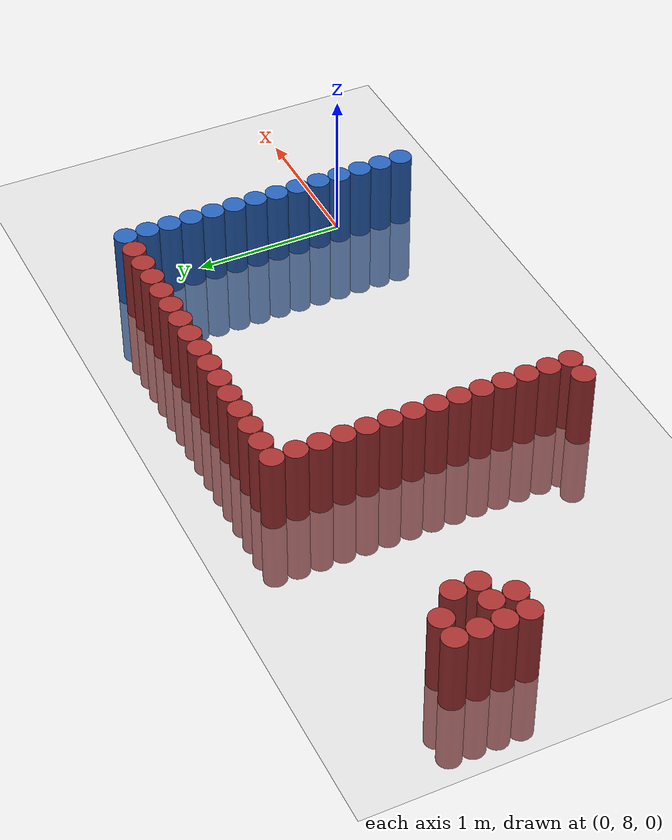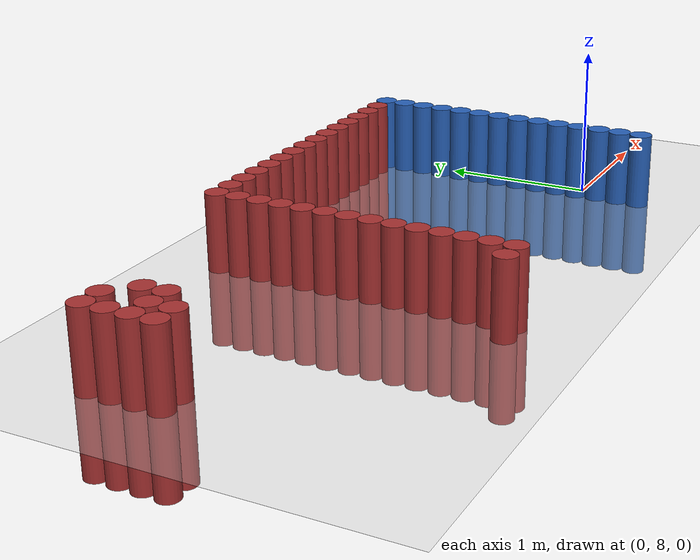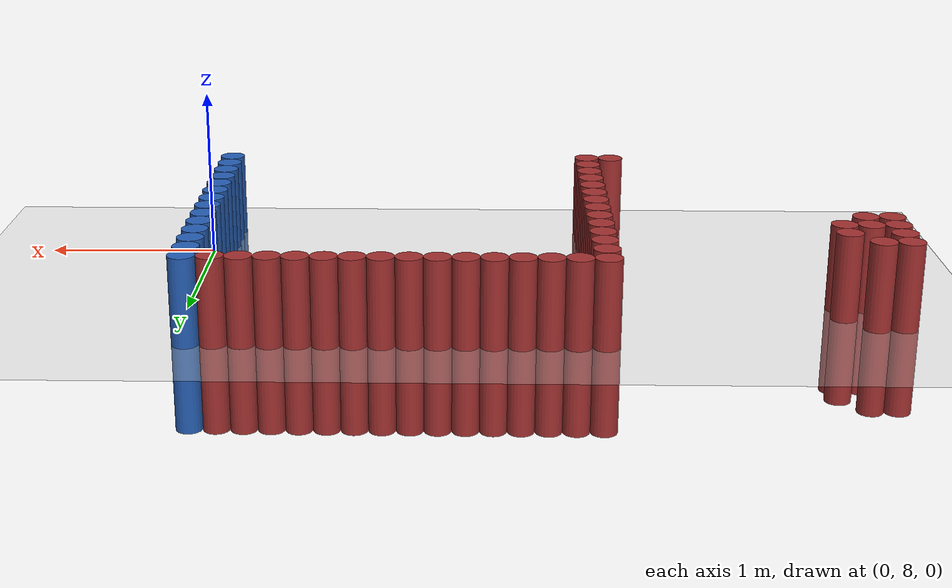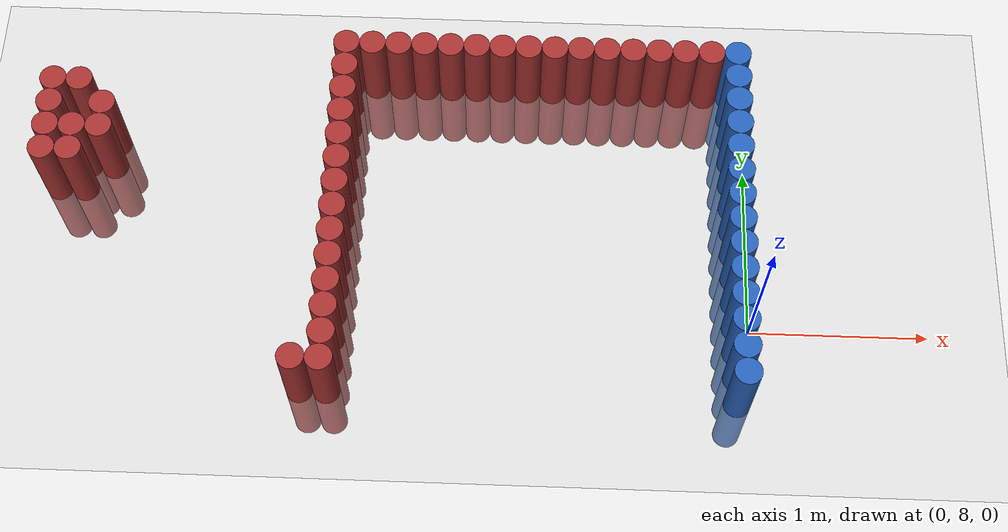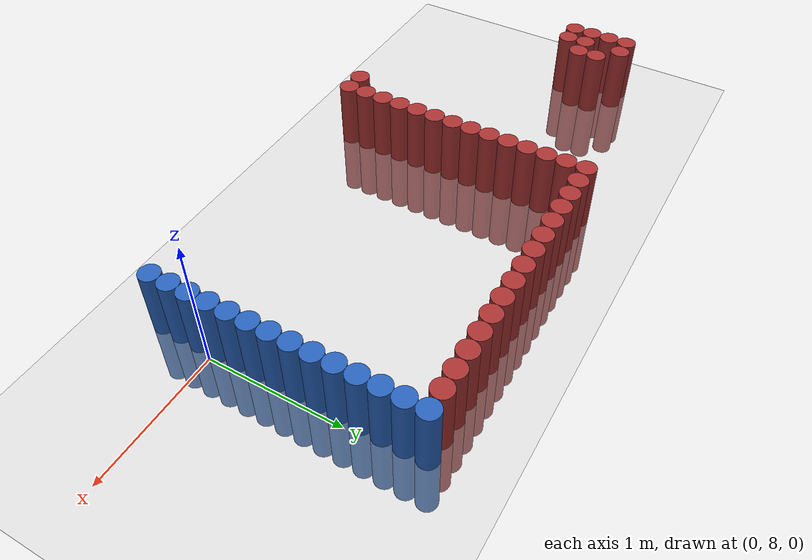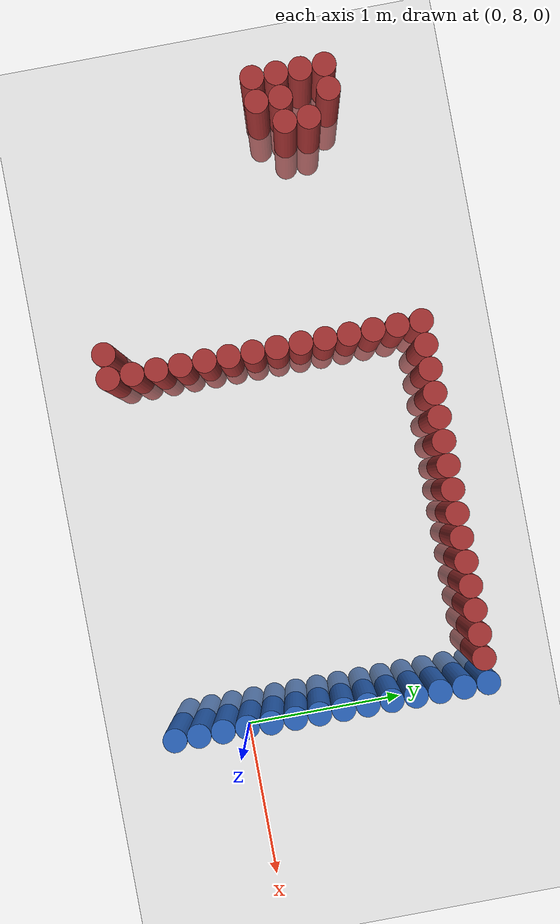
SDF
<sdf version="1.6">
 <world name="default">
  <model name="ground_plane">
   <static>1</static>
   <link name="link">
    <collision name="collision">
     <geometry><plane><normal>0 0 1</normal><size>100 100</size></plane></geometry>
     <surface><friction><ode><mu>100</mu><mu2>50</mu2></ode></friction></surface>
    </collision>
    <visual name="visual">
     <cast_shadows>0</cast_shadows>
     <geometry><plane><normal>0 0 1</normal><size>100 100</size></plane></geometry>
     <material>
      <script><uri>file://media/materials/scripts/gazebo.material</uri><name>Gazebo/Grey</name></script>
     </material>
    </visual>
   </link>
  </model>
  <model name="unit_cylinder_246">
   <static>1</static>
   <pose>-3.975000 8.775000 0.000000 0.000000 0.000000 0.000000</pose>
   <link name="link">
    <inertial>
     <mass>1</mass>
     <inertia><ixx>0.145833</ixx><ixy>0</ixy><ixz>0</ixz><iyy>0.145833</iyy><iyz>0</iyz><izz>0.125</izz></inertia>
    </inertial>
    <collision name="collision">
     <geometry><cylinder><radius>0.075000</radius><length>1</length></cylinder></geometry>
    </collision>
    <visual name="visual">
     <geometry><cylinder><radius>0.075000</radius><length>1</length></cylinder></geometry>
     <material>
      <ambient>0.648000 0.192000 0.192000 1</ambient>
      <diffuse>0.648000 0.192000 0.192000 1</diffuse>
     </material>
     <material>
      <script><name>Gazebo/Grey</name><uri>file://media/materials/scripts/gazebo.material</uri></script>
     </material>
    </visual>
   </link>
  </model>
  <model name="unit_cylinder_247">
   <static>1</static>
   <pose>-3.975000 8.925000 0.000000 0.000000 0.000000 0.000000</pose>
   <link name="link">
    <inertial>
     <mass>1</mass>
     <inertia><ixx>0.145833</ixx><ixy>0</ixy><ixz>0</ixz><iyy>0.145833</iyy><iyz>0</iyz><izz>0.125</izz></inertia>
    </inertial>
    <collision name="collision">
     <geometry><cylinder><radius>0.075000</radius><length>1</length></cylinder></geometry>
    </collision>
    <visual name="visual">
     <geometry><cylinder><radius>0.075000</radius><length>1</length></cylinder></geometry>
     <material>
      <ambient>0.648000 0.192000 0.192000 1</ambient>
      <diffuse>0.648000 0.192000 0.192000 1</diffuse>
     </material>
     <material>
      <script><name>Gazebo/Grey</name><uri>file://media/materials/scripts/gazebo.material</uri></script>
     </material>
    </visual>
   </link>
  </model>
  <model name="unit_cylinder_248">
   <static>1</static>
   <pose>-3.975000 9.075000 0.000000 0.000000 0.000000 0.000000</pose>
   <link name="link">
    <inertial>
     <mass>1</mass>
     <inertia><ixx>0.145833</ixx><ixy>0</ixy><ixz>0</ixz><iyy>0.145833</iyy><iyz>0</iyz><izz>0.125</izz></inertia>
    </inertial>
    <collision name="collision">
     <geometry><cylinder><radius>0.075000</radius><length>1</length></cylinder></geometry>
    </collision>
    <visual name="visual">
     <geometry><cylinder><radius>0.075000</radius><length>1</length></cylinder></geometry>
     <material>
      <ambient>0.648000 0.192000 0.192000 1</ambient>
      <diffuse>0.648000 0.192000 0.192000 1</diffuse>
     </material>
     <material>
      <script><name>Gazebo/Grey</name><uri>file://media/materials/scripts/gazebo.material</uri></script>
     </material>
    </visual>
   </link>
  </model>
  <model name="unit_cylinder_249">
   <static>1</static>
   <pose>-3.975000 9.225000 0.000000 0.000000 0.000000 0.000000</pose>
   <link name="link">
    <inertial>
     <mass>1</mass>
     <inertia><ixx>0.145833</ixx><ixy>0</ixy><ixz>0</ixz><iyy>0.145833</iyy><iyz>0</iyz><izz>0.125</izz></inertia>
    </inertial>
    <collision name="collision">
     <geometry><cylinder><radius>0.075000</radius><length>1</length></cylinder></geometry>
    </collision>
    <visual name="visual">
     <geometry><cylinder><radius>0.075000</radius><length>1</length></cylinder></geometry>
     <material>
      <ambient>0.648000 0.192000 0.192000 1</ambient>
      <diffuse>0.648000 0.192000 0.192000 1</diffuse>
     </material>
     <material>
      <script><name>Gazebo/Grey</name><uri>file://media/materials/scripts/gazebo.material</uri></script>
     </material>
    </visual>
   </link>
  </model>
  <model name="unit_cylinder_250">
   <static>1</static>
   <pose>-3.825000 8.775000 0.000000 0.000000 0.000000 0.000000</pose>
   <link name="link">
    <inertial>
     <mass>1</mass>
     <inertia><ixx>0.145833</ixx><ixy>0</ixy><ixz>0</ixz><iyy>0.145833</iyy><iyz>0</iyz><izz>0.125</izz></inertia>
    </inertial>
    <collision name="collision">
     <geometry><cylinder><radius>0.075000</radius><length>1</length></cylinder></geometry>
    </collision>
    <visual name="visual">
     <geometry><cylinder><radius>0.075000</radius><length>1</length></cylinder></geometry>
     <material>
      <ambient>0.648000 0.192000 0.192000 1</ambient>
      <diffuse>0.648000 0.192000 0.192000 1</diffuse>
     </material>
     <material>
      <script><name>Gazebo/Grey</name><uri>file://media/materials/scripts/gazebo.material</uri></script>
     </material>
    </visual>
   </link>
  </model>
  <model name="unit_cylinder_251">
   <static>1</static>
   <pose>-3.825000 8.925000 0.000000 0.000000 0.000000 0.000000</pose>
   <link name="link">
    <inertial>
     <mass>1</mass>
     <inertia><ixx>0.145833</ixx><ixy>0</ixy><ixz>0</ixz><iyy>0.145833</iyy><iyz>0</iyz><izz>0.125</izz></inertia>
    </inertial>
    <collision name="collision">
     <geometry><cylinder><radius>0.075000</radius><length>1</length></cylinder></geometry>
    </collision>
    <visual name="visual">
     <geometry><cylinder><radius>0.075000</radius><length>1</length></cylinder></geometry>
     <material>
      <ambient>0.648000 0.192000 0.192000 1</ambient>
      <diffuse>0.648000 0.192000 0.192000 1</diffuse>
     </material>
     <material>
      <script><name>Gazebo/Grey</name><uri>file://media/materials/scripts/gazebo.material</uri></script>
     </material>
    </visual>
   </link>
  </model>
  <model name="unit_cylinder_252">
   <static>1</static>
   <pose>-3.825000 9.225000 0.000000 0.000000 0.000000 0.000000</pose>
   <link name="link">
    <inertial>
     <mass>1</mass>
     <inertia><ixx>0.145833</ixx><ixy>0</ixy><ixz>0</ixz><iyy>0.145833</iyy><iyz>0</iyz><izz>0.125</izz></inertia>
    </inertial>
    <collision name="collision">
     <geometry><cylinder><radius>0.075000</radius><length>1</length></cylinder></geometry>
    </collision>
    <visual name="visual">
     <geometry><cylinder><radius>0.075000</radius><length>1</length></cylinder></geometry>
     <material>
      <ambient>0.648000 0.192000 0.192000 1</ambient>
      <diffuse>0.648000 0.192000 0.192000 1</diffuse>
     </material>
     <material>
      <script><name>Gazebo/Grey</name><uri>file://media/materials/scripts/gazebo.material</uri></script>
     </material>
    </visual>
   </link>
  </model>
  <model name="unit_cylinder_255">
   <static>1</static>
   <pose>-3.675000 8.925000 0.000000 0.000000 0.000000 0.000000</pose>
   <link name="link">
    <inertial>
     <mass>1</mass>
     <inertia><ixx>0.145833</ixx><ixy>0</ixy><ixz>0</ixz><iyy>0.145833</iyy><iyz>0</iyz><izz>0.125</izz></inertia>
    </inertial>
    <collision name="collision">
     <geometry><cylinder><radius>0.075000</radius><length>1</length></cylinder></geometry>
    </collision>
    <visual name="visual">
     <geometry><cylinder><radius>0.075000</radius><length>1</length></cylinder></geometry>
     <material>
      <ambient>0.648000 0.192000 0.192000 1</ambient>
      <diffuse>0.648000 0.192000 0.192000 1</diffuse>
     </material>
     <material>
      <script><name>Gazebo/Grey</name><uri>file://media/materials/scripts/gazebo.material</uri></script>
     </material>
    </visual>
   </link>
  </model>
  <model name="unit_cylinder_256">
   <static>1</static>
   <pose>-3.675000 9.075000 0.000000 0.000000 0.000000 0.000000</pose>
   <link name="link">
    <inertial>
     <mass>1</mass>
     <inertia><ixx>0.145833</ixx><ixy>0</ixy><ixz>0</ixz><iyy>0.145833</iyy><iyz>0</iyz><izz>0.125</izz></inertia>
    </inertial>
    <collision name="collision">
     <geometry><cylinder><radius>0.075000</radius><length>1</length></cylinder></geometry>
    </collision>
    <visual name="visual">
     <geometry><cylinder><radius>0.075000</radius><length>1</length></cylinder></geometry>
     <material>
      <ambient>0.648000 0.192000 0.192000 1</ambient>
      <diffuse>0.648000 0.192000 0.192000 1</diffuse>
     </material>
     <material>
      <script><name>Gazebo/Grey</name><uri>file://media/materials/scripts/gazebo.material</uri></script>
     </material>
    </visual>
   </link>
  </model>
  <model name="unit_cylinder_287">
   <static>1</static>
   <pose>-2.475000 7.575000 0.000000 0.000000 0.000000 0.000000</pose>
   <link name="link">
    <inertial>
     <mass>1</mass>
     <inertia><ixx>0.145833</ixx><ixy>0</ixy><ixz>0</ixz><iyy>0.145833</iyy><iyz>0</iyz><izz>0.125</izz></inertia>
    </inertial>
    <collision name="collision">
     <geometry><cylinder><radius>0.075000</radius><length>1</length></cylinder></geometry>
    </collision>
    <visual name="visual">
     <geometry><cylinder><radius>0.075000</radius><length>1</length></cylinder></geometry>
     <material>
      <ambient>0.648000 0.192000 0.192000 1</ambient>
      <diffuse>0.648000 0.192000 0.192000 1</diffuse>
     </material>
     <material>
      <script><name>Gazebo/Grey</name><uri>file://media/materials/scripts/gazebo.material</uri></script>
     </material>
    </visual>
   </link>
  </model>
  <model name="unit_cylinder_289">
   <static>1</static>
   <pose>-2.325000 7.575000 0.000000 0.000000 0.000000 0.000000</pose>
   <link name="link">
    <inertial>
     <mass>1</mass>
     <inertia><ixx>0.145833</ixx><ixy>0</ixy><ixz>0</ixz><iyy>0.145833</iyy><iyz>0</iyz><izz>0.125</izz></inertia>
    </inertial>
    <collision name="collision">
     <geometry><cylinder><radius>0.075000</radius><length>1</length></cylinder></geometry>
    </collision>
    <visual name="visual">
     <geometry><cylinder><radius>0.075000</radius><length>1</length></cylinder></geometry>
     <material>
      <ambient>0.648000 0.192000 0.192000 1</ambient>
      <diffuse>0.648000 0.192000 0.192000 1</diffuse>
     </material>
     <material>
      <script><name>Gazebo/Grey</name><uri>file://media/materials/scripts/gazebo.material</uri></script>
     </material>
    </visual>
   </link>
  </model>
  <model name="unit_cylinder_290">
   <static>1</static>
   <pose>-2.325000 7.725000 0.000000 0.000000 0.000000 0.000000</pose>
   <link name="link">
    <inertial>
     <mass>1</mass>
     <inertia><ixx>0.145833</ixx><ixy>0</ixy><ixz>0</ixz><iyy>0.145833</iyy><iyz>0</iyz><izz>0.125</izz></inertia>
    </inertial>
    <collision name="collision">
     <geometry><cylinder><radius>0.075000</radius><length>1</length></cylinder></geometry>
    </collision>
    <visual name="visual">
     <geometry><cylinder><radius>0.075000</radius><length>1</length></cylinder></geometry>
     <material>
      <ambient>0.648000 0.192000 0.192000 1</ambient>
      <diffuse>0.648000 0.192000 0.192000 1</diffuse>
     </material>
     <material>
      <script><name>Gazebo/Grey</name><uri>file://media/materials/scripts/gazebo.material</uri></script>
     </material>
    </visual>
   </link>
  </model>
  <model name="unit_cylinder_291">
   <static>1</static>
   <pose>-2.325000 7.875000 0.000000 0.000000 0.000000 0.000000</pose>
   <link name="link">
    <inertial>
     <mass>1</mass>
     <inertia><ixx>0.145833</ixx><ixy>0</ixy><ixz>0</ixz><iyy>0.145833</iyy><iyz>0</iyz><izz>0.125</izz></inertia>
    </inertial>
    <collision name="collision">
     <geometry><cylinder><radius>0.075000</radius><length>1</length></cylinder></geometry>
    </collision>
    <visual name="visual">
     <geometry><cylinder><radius>0.075000</radius><length>1</length></cylinder></geometry>
     <material>
      <ambient>0.648000 0.192000 0.192000 1</ambient>
      <diffuse>0.648000 0.192000 0.192000 1</diffuse>
     </material>
     <material>
      <script><name>Gazebo/Grey</name><uri>file://media/materials/scripts/gazebo.material</uri></script>
     </material>
    </visual>
   </link>
  </model>
  <model name="unit_cylinder_292">
   <static>1</static>
   <pose>-2.325000 8.025000 0.000000 0.000000 0.000000 0.000000</pose>
   <link name="link">
    <inertial>
     <mass>1</mass>
     <inertia><ixx>0.145833</ixx><ixy>0</ixy><ixz>0</ixz><iyy>0.145833</iyy><iyz>0</iyz><izz>0.125</izz></inertia>
    </inertial>
    <collision name="collision">
     <geometry><cylinder><radius>0.075000</radius><length>1</length></cylinder></geometry>
    </collision>
    <visual name="visual">
     <geometry><cylinder><radius>0.075000</radius><length>1</length></cylinder></geometry>
     <material>
      <ambient>0.648000 0.192000 0.192000 1</ambient>
      <diffuse>0.648000 0.192000 0.192000 1</diffuse>
     </material>
     <material>
      <script><name>Gazebo/Grey</name><uri>file://media/materials/scripts/gazebo.material</uri></script>
     </material>
    </visual>
   </link>
  </model>
  <model name="unit_cylinder_293">
   <static>1</static>
   <pose>-2.325000 8.175000 0.000000 0.000000 0.000000 0.000000</pose>
   <link name="link">
    <inertial>
     <mass>1</mass>
     <inertia><ixx>0.145833</ixx><ixy>0</ixy><ixz>0</ixz><iyy>0.145833</iyy><iyz>0</iyz><izz>0.125</izz></inertia>
    </inertial>
    <collision name="collision">
     <geometry><cylinder><radius>0.075000</radius><length>1</length></cylinder></geometry>
    </collision>
    <visual name="visual">
     <geometry><cylinder><radius>0.075000</radius><length>1</length></cylinder></geometry>
     <material>
      <ambient>0.648000 0.192000 0.192000 1</ambient>
      <diffuse>0.648000 0.192000 0.192000 1</diffuse>
     </material>
     <material>
      <script><name>Gazebo/Grey</name><uri>file://media/materials/scripts/gazebo.material</uri></script>
     </material>
    </visual>
   </link>
  </model>
  <model name="unit_cylinder_294">
   <static>1</static>
   <pose>-2.325000 8.325000 0.000000 0.000000 0.000000 0.000000</pose>
   <link name="link">
    <inertial>
     <mass>1</mass>
     <inertia><ixx>0.145833</ixx><ixy>0</ixy><ixz>0</ixz><iyy>0.145833</iyy><iyz>0</iyz><izz>0.125</izz></inertia>
    </inertial>
    <collision name="collision">
     <geometry><cylinder><radius>0.075000</radius><length>1</length></cylinder></geometry>
    </collision>
    <visual name="visual">
     <geometry><cylinder><radius>0.075000</radius><length>1</length></cylinder></geometry>
     <material>
      <ambient>0.648000 0.192000 0.192000 1</ambient>
      <diffuse>0.648000 0.192000 0.192000 1</diffuse>
     </material>
     <material>
      <script><name>Gazebo/Grey</name><uri>file://media/materials/scripts/gazebo.material</uri></script>
     </material>
    </visual>
   </link>
  </model>
  <model name="unit_cylinder_295">
   <static>1</static>
   <pose>-2.325000 8.475000 0.000000 0.000000 0.000000 0.000000</pose>
   <link name="link">
    <inertial>
     <mass>1</mass>
     <inertia><ixx>0.145833</ixx><ixy>0</ixy><ixz>0</ixz><iyy>0.145833</iyy><iyz>0</iyz><izz>0.125</izz></inertia>
    </inertial>
    <collision name="collision">
     <geometry><cylinder><radius>0.075000</radius><length>1</length></cylinder></geometry>
    </collision>
    <visual name="visual">
     <geometry><cylinder><radius>0.075000</radius><length>1</length></cylinder></geometry>
     <material>
      <ambient>0.648000 0.192000 0.192000 1</ambient>
      <diffuse>0.648000 0.192000 0.192000 1</diffuse>
     </material>
     <material>
      <script><name>Gazebo/Grey</name><uri>file://media/materials/scripts/gazebo.material</uri></script>
     </material>
    </visual>
   </link>
  </model>
  <model name="unit_cylinder_296">
   <static>1</static>
   <pose>-2.325000 8.625000 0.000000 0.000000 0.000000 0.000000</pose>
   <link name="link">
    <inertial>
     <mass>1</mass>
     <inertia><ixx>0.145833</ixx><ixy>0</ixy><ixz>0</ixz><iyy>0.145833</iyy><iyz>0</iyz><izz>0.125</izz></inertia>
    </inertial>
    <collision name="collision">
     <geometry><cylinder><radius>0.075000</radius><length>1</length></cylinder></geometry>
    </collision>
    <visual name="visual">
     <geometry><cylinder><radius>0.075000</radius><length>1</length></cylinder></geometry>
     <material>
      <ambient>0.648000 0.192000 0.192000 1</ambient>
      <diffuse>0.648000 0.192000 0.192000 1</diffuse>
     </material>
     <material>
      <script><name>Gazebo/Grey</name><uri>file://media/materials/scripts/gazebo.material</uri></script>
     </material>
    </visual>
   </link>
  </model>
  <model name="unit_cylinder_297">
   <static>1</static>
   <pose>-2.325000 8.775000 0.000000 0.000000 0.000000 0.000000</pose>
   <link name="link">
    <inertial>
     <mass>1</mass>
     <inertia><ixx>0.145833</ixx><ixy>0</ixy><ixz>0</ixz><iyy>0.145833</iyy><iyz>0</iyz><izz>0.125</izz></inertia>
    </inertial>
    <collision name="collision">
     <geometry><cylinder><radius>0.075000</radius><length>1</length></cylinder></geometry>
    </collision>
    <visual name="visual">
     <geometry><cylinder><radius>0.075000</radius><length>1</length></cylinder></geometry>
     <material>
      <ambient>0.648000 0.192000 0.192000 1</ambient>
      <diffuse>0.648000 0.192000 0.192000 1</diffuse>
     </material>
     <material>
      <script><name>Gazebo/Grey</name><uri>file://media/materials/scripts/gazebo.material</uri></script>
     </material>
    </visual>
   </link>
  </model>
  <model name="unit_cylinder_298">
   <static>1</static>
   <pose>-2.325000 8.925000 0.000000 0.000000 0.000000 0.000000</pose>
   <link name="link">
    <inertial>
     <mass>1</mass>
     <inertia><ixx>0.145833</ixx><ixy>0</ixy><ixz>0</ixz><iyy>0.145833</iyy><iyz>0</iyz><izz>0.125</izz></inertia>
    </inertial>
    <collision name="collision">
     <geometry><cylinder><radius>0.075000</radius><length>1</length></cylinder></geometry>
    </collision>
    <visual name="visual">
     <geometry><cylinder><radius>0.075000</radius><length>1</length></cylinder></geometry>
     <material>
      <ambient>0.648000 0.192000 0.192000 1</ambient>
      <diffuse>0.648000 0.192000 0.192000 1</diffuse>
     </material>
     <material>
      <script><name>Gazebo/Grey</name><uri>file://media/materials/scripts/gazebo.material</uri></script>
     </material>
    </visual>
   </link>
  </model>
  <model name="unit_cylinder_299">
   <static>1</static>
   <pose>-2.325000 9.075000 0.000000 0.000000 0.000000 0.000000</pose>
   <link name="link">
    <inertial>
     <mass>1</mass>
     <inertia><ixx>0.145833</ixx><ixy>0</ixy><ixz>0</ixz><iyy>0.145833</iyy><iyz>0</iyz><izz>0.125</izz></inertia>
    </inertial>
    <collision name="collision">
     <geometry><cylinder><radius>0.075000</radius><length>1</length></cylinder></geometry>
    </collision>
    <visual name="visual">
     <geometry><cylinder><radius>0.075000</radius><length>1</length></cylinder></geometry>
     <material>
      <ambient>0.648000 0.192000 0.192000 1</ambient>
      <diffuse>0.648000 0.192000 0.192000 1</diffuse>
     </material>
     <material>
      <script><name>Gazebo/Grey</name><uri>file://media/materials/scripts/gazebo.material</uri></script>
     </material>
    </visual>
   </link>
  </model>
  <model name="unit_cylinder_300">
   <static>1</static>
   <pose>-2.325000 9.225000 0.000000 0.000000 0.000000 0.000000</pose>
   <link name="link">
    <inertial>
     <mass>1</mass>
     <inertia><ixx>0.145833</ixx><ixy>0</ixy><ixz>0</ixz><iyy>0.145833</iyy><iyz>0</iyz><izz>0.125</izz></inertia>
    </inertial>
    <collision name="collision">
     <geometry><cylinder><radius>0.075000</radius><length>1</length></cylinder></geometry>
    </collision>
    <visual name="visual">
     <geometry><cylinder><radius>0.075000</radius><length>1</length></cylinder></geometry>
     <material>
      <ambient>0.648000 0.192000 0.192000 1</ambient>
      <diffuse>0.648000 0.192000 0.192000 1</diffuse>
     </material>
     <material>
      <script><name>Gazebo/Grey</name><uri>file://media/materials/scripts/gazebo.material</uri></script>
     </material>
    </visual>
   </link>
  </model>
  <model name="unit_cylinder_301">
   <static>1</static>
   <pose>-2.325000 9.375000 0.000000 0.000000 0.000000 0.000000</pose>
   <link name="link">
    <inertial>
     <mass>1</mass>
     <inertia><ixx>0.145833</ixx><ixy>0</ixy><ixz>0</ixz><iyy>0.145833</iyy><iyz>0</iyz><izz>0.125</izz></inertia>
    </inertial>
    <collision name="collision">
     <geometry><cylinder><radius>0.075000</radius><length>1</length></cylinder></geometry>
    </collision>
    <visual name="visual">
     <geometry><cylinder><radius>0.075000</radius><length>1</length></cylinder></geometry>
     <material>
      <ambient>0.648000 0.192000 0.192000 1</ambient>
      <diffuse>0.648000 0.192000 0.192000 1</diffuse>
     </material>
     <material>
      <script><name>Gazebo/Grey</name><uri>file://media/materials/scripts/gazebo.material</uri></script>
     </material>
    </visual>
   </link>
  </model>
  <model name="unit_cylinder_302">
   <static>1</static>
   <pose>-2.325000 9.525000 0.000000 0.000000 0.000000 0.000000</pose>
   <link name="link">
    <inertial>
     <mass>1</mass>
     <inertia><ixx>0.145833</ixx><ixy>0</ixy><ixz>0</ixz><iyy>0.145833</iyy><iyz>0</iyz><izz>0.125</izz></inertia>
    </inertial>
    <collision name="collision">
     <geometry><cylinder><radius>0.075000</radius><length>1</length></cylinder></geometry>
    </collision>
    <visual name="visual">
     <geometry><cylinder><radius>0.075000</radius><length>1</length></cylinder></geometry>
     <material>
      <ambient>0.648000 0.192000 0.192000 1</ambient>
      <diffuse>0.648000 0.192000 0.192000 1</diffuse>
     </material>
     <material>
      <script><name>Gazebo/Grey</name><uri>file://media/materials/scripts/gazebo.material</uri></script>
     </material>
    </visual>
   </link>
  </model>
  <model name="unit_cylinder_304">
   <static>1</static>
   <pose>-2.175000 9.525000 0.000000 0.000000 0.000000 0.000000</pose>
   <link name="link">
    <inertial>
     <mass>1</mass>
     <inertia><ixx>0.145833</ixx><ixy>0</ixy><ixz>0</ixz><iyy>0.145833</iyy><iyz>0</iyz><izz>0.125</izz></inertia>
    </inertial>
    <collision name="collision">
     <geometry><cylinder><radius>0.075000</radius><length>1</length></cylinder></geometry>
    </collision>
    <visual name="visual">
     <geometry><cylinder><radius>0.075000</radius><length>1</length></cylinder></geometry>
     <material>
      <ambient>0.648000 0.192000 0.192000 1</ambient>
      <diffuse>0.648000 0.192000 0.192000 1</diffuse>
     </material>
     <material>
      <script><name>Gazebo/Grey</name><uri>file://media/materials/scripts/gazebo.material</uri></script>
     </material>
    </visual>
   </link>
  </model>
  <model name="unit_cylinder_306">
   <static>1</static>
   <pose>-2.025000 9.525000 0.000000 0.000000 0.000000 0.000000</pose>
   <link name="link">
    <inertial>
     <mass>1</mass>
     <inertia><ixx>0.145833</ixx><ixy>0</ixy><ixz>0</ixz><iyy>0.145833</iyy><iyz>0</iyz><izz>0.125</izz></inertia>
    </inertial>
    <collision name="collision">
     <geometry><cylinder><radius>0.075000</radius><length>1</length></cylinder></geometry>
    </collision>
    <visual name="visual">
     <geometry><cylinder><radius>0.075000</radius><length>1</length></cylinder></geometry>
     <material>
      <ambient>0.648000 0.192000 0.192000 1</ambient>
      <diffuse>0.648000 0.192000 0.192000 1</diffuse>
     </material>
     <material>
      <script><name>Gazebo/Grey</name><uri>file://media/materials/scripts/gazebo.material</uri></script>
     </material>
    </visual>
   </link>
  </model>
  <model name="unit_cylinder_308">
   <static>1</static>
   <pose>-1.875000 9.525000 0.000000 0.000000 0.000000 0.000000</pose>
   <link name="link">
    <inertial>
     <mass>1</mass>
     <inertia><ixx>0.145833</ixx><ixy>0</ixy><ixz>0</ixz><iyy>0.145833</iyy><iyz>0</iyz><izz>0.125</izz></inertia>
    </inertial>
    <collision name="collision">
     <geometry><cylinder><radius>0.075000</radius><length>1</length></cylinder></geometry>
    </collision>
    <visual name="visual">
     <geometry><cylinder><radius>0.075000</radius><length>1</length></cylinder></geometry>
     <material>
      <ambient>0.648000 0.192000 0.192000 1</ambient>
      <diffuse>0.648000 0.192000 0.192000 1</diffuse>
     </material>
     <material>
      <script><name>Gazebo/Grey</name><uri>file://media/materials/scripts/gazebo.material</uri></script>
     </material>
    </visual>
   </link>
  </model>
  <model name="unit_cylinder_310">
   <static>1</static>
   <pose>-1.725000 9.525000 0.000000 0.000000 0.000000 0.000000</pose>
   <link name="link">
    <inertial>
     <mass>1</mass>
     <inertia><ixx>0.145833</ixx><ixy>0</ixy><ixz>0</ixz><iyy>0.145833</iyy><iyz>0</iyz><izz>0.125</izz></inertia>
    </inertial>
    <collision name="collision">
     <geometry><cylinder><radius>0.075000</radius><length>1</length></cylinder></geometry>
    </collision>
    <visual name="visual">
     <geometry><cylinder><radius>0.075000</radius><length>1</length></cylinder></geometry>
     <material>
      <ambient>0.648000 0.192000 0.192000 1</ambient>
      <diffuse>0.648000 0.192000 0.192000 1</diffuse>
     </material>
     <material>
      <script><name>Gazebo/Grey</name><uri>file://media/materials/scripts/gazebo.material</uri></script>
     </material>
    </visual>
   </link>
  </model>
  <model name="unit_cylinder_312">
   <static>1</static>
   <pose>-1.575000 9.525000 0.000000 0.000000 0.000000 0.000000</pose>
   <link name="link">
    <inertial>
     <mass>1</mass>
     <inertia><ixx>0.145833</ixx><ixy>0</ixy><ixz>0</ixz><iyy>0.145833</iyy><iyz>0</iyz><izz>0.125</izz></inertia>
    </inertial>
    <collision name="collision">
     <geometry><cylinder><radius>0.075000</radius><length>1</length></cylinder></geometry>
    </collision>
    <visual name="visual">
     <geometry><cylinder><radius>0.075000</radius><length>1</length></cylinder></geometry>
     <material>
      <ambient>0.648000 0.192000 0.192000 1</ambient>
      <diffuse>0.648000 0.192000 0.192000 1</diffuse>
     </material>
     <material>
      <script><name>Gazebo/Grey</name><uri>file://media/materials/scripts/gazebo.material</uri></script>
     </material>
    </visual>
   </link>
  </model>
  <model name="unit_cylinder_314">
   <static>1</static>
   <pose>-1.425000 9.525000 0.000000 0.000000 0.000000 0.000000</pose>
   <link name="link">
    <inertial>
     <mass>1</mass>
     <inertia><ixx>0.145833</ixx><ixy>0</ixy><ixz>0</ixz><iyy>0.145833</iyy><iyz>0</iyz><izz>0.125</izz></inertia>
    </inertial>
    <collision name="collision">
     <geometry><cylinder><radius>0.075000</radius><length>1</length></cylinder></geometry>
    </collision>
    <visual name="visual">
     <geometry><cylinder><radius>0.075000</radius><length>1</length></cylinder></geometry>
     <material>
      <ambient>0.648000 0.192000 0.192000 1</ambient>
      <diffuse>0.648000 0.192000 0.192000 1</diffuse>
     </material>
     <material>
      <script><name>Gazebo/Grey</name><uri>file://media/materials/scripts/gazebo.material</uri></script>
     </material>
    </visual>
   </link>
  </model>
  <model name="unit_cylinder_316">
   <static>1</static>
   <pose>-1.275000 9.525000 0.000000 0.000000 0.000000 0.000000</pose>
   <link name="link">
    <inertial>
     <mass>1</mass>
     <inertia><ixx>0.145833</ixx><ixy>0</ixy><ixz>0</ixz><iyy>0.145833</iyy><iyz>0</iyz><izz>0.125</izz></inertia>
    </inertial>
    <collision name="collision">
     <geometry><cylinder><radius>0.075000</radius><length>1</length></cylinder></geometry>
    </collision>
    <visual name="visual">
     <geometry><cylinder><radius>0.075000</radius><length>1</length></cylinder></geometry>
     <material>
      <ambient>0.648000 0.192000 0.192000 1</ambient>
      <diffuse>0.648000 0.192000 0.192000 1</diffuse>
     </material>
     <material>
      <script><name>Gazebo/Grey</name><uri>file://media/materials/scripts/gazebo.material</uri></script>
     </material>
    </visual>
   </link>
  </model>
  <model name="unit_cylinder_318">
   <static>1</static>
   <pose>-1.125000 9.525000 0.000000 0.000000 0.000000 0.000000</pose>
   <link name="link">
    <inertial>
     <mass>1</mass>
     <inertia><ixx>0.145833</ixx><ixy>0</ixy><ixz>0</ixz><iyy>0.145833</iyy><iyz>0</iyz><izz>0.125</izz></inertia>
    </inertial>
    <collision name="collision">
     <geometry><cylinder><radius>0.075000</radius><length>1</length></cylinder></geometry>
    </collision>
    <visual name="visual">
     <geometry><cylinder><radius>0.075000</radius><length>1</length></cylinder></geometry>
     <material>
      <ambient>0.648000 0.192000 0.192000 1</ambient>
      <diffuse>0.648000 0.192000 0.192000 1</diffuse>
     </material>
     <material>
      <script><name>Gazebo/Grey</name><uri>file://media/materials/scripts/gazebo.material</uri></script>
     </material>
    </visual>
   </link>
  </model>
  <model name="unit_cylinder_320">
   <static>1</static>
   <pose>-0.975000 9.525000 0.000000 0.000000 0.000000 0.000000</pose>
   <link name="link">
    <inertial>
     <mass>1</mass>
     <inertia><ixx>0.145833</ixx><ixy>0</ixy><ixz>0</ixz><iyy>0.145833</iyy><iyz>0</iyz><izz>0.125</izz></inertia>
    </inertial>
    <collision name="collision">
     <geometry><cylinder><radius>0.075000</radius><length>1</length></cylinder></geometry>
    </collision>
    <visual name="visual">
     <geometry><cylinder><radius>0.075000</radius><length>1</length></cylinder></geometry>
     <material>
      <ambient>0.648000 0.192000 0.192000 1</ambient>
      <diffuse>0.648000 0.192000 0.192000 1</diffuse>
     </material>
     <material>
      <script><name>Gazebo/Grey</name><uri>file://media/materials/scripts/gazebo.material</uri></script>
     </material>
    </visual>
   </link>
  </model>
  <model name="unit_cylinder_322">
   <static>1</static>
   <pose>-0.825000 9.525000 0.000000 0.000000 0.000000 0.000000</pose>
   <link name="link">
    <inertial>
     <mass>1</mass>
     <inertia><ixx>0.145833</ixx><ixy>0</ixy><ixz>0</ixz><iyy>0.145833</iyy><iyz>0</iyz><izz>0.125</izz></inertia>
    </inertial>
    <collision name="collision">
     <geometry><cylinder><radius>0.075000</radius><length>1</length></cylinder></geometry>
    </collision>
    <visual name="visual">
     <geometry><cylinder><radius>0.075000</radius><length>1</length></cylinder></geometry>
     <material>
      <ambient>0.648000 0.192000 0.192000 1</ambient>
      <diffuse>0.648000 0.192000 0.192000 1</diffuse>
     </material>
     <material>
      <script><name>Gazebo/Grey</name><uri>file://media/materials/scripts/gazebo.material</uri></script>
     </material>
    </visual>
   </link>
  </model>
  <model name="unit_cylinder_324">
   <static>1</static>
   <pose>-0.675000 9.525000 0.000000 0.000000 0.000000 0.000000</pose>
   <link name="link">
    <inertial>
     <mass>1</mass>
     <inertia><ixx>0.145833</ixx><ixy>0</ixy><ixz>0</ixz><iyy>0.145833</iyy><iyz>0</iyz><izz>0.125</izz></inertia>
    </inertial>
    <collision name="collision">
     <geometry><cylinder><radius>0.075000</radius><length>1</length></cylinder></geometry>
    </collision>
    <visual name="visual">
     <geometry><cylinder><radius>0.075000</radius><length>1</length></cylinder></geometry>
     <material>
      <ambient>0.648000 0.192000 0.192000 1</ambient>
      <diffuse>0.648000 0.192000 0.192000 1</diffuse>
     </material>
     <material>
      <script><name>Gazebo/Grey</name><uri>file://media/materials/scripts/gazebo.material</uri></script>
     </material>
    </visual>
   </link>
  </model>
  <model name="unit_cylinder_326">
   <static>1</static>
   <pose>-0.525000 9.525000 0.000000 0.000000 0.000000 0.000000</pose>
   <link name="link">
    <inertial>
     <mass>1</mass>
     <inertia><ixx>0.145833</ixx><ixy>0</ixy><ixz>0</ixz><iyy>0.145833</iyy><iyz>0</iyz><izz>0.125</izz></inertia>
    </inertial>
    <collision name="collision">
     <geometry><cylinder><radius>0.075000</radius><length>1</length></cylinder></geometry>
    </collision>
    <visual name="visual">
     <geometry><cylinder><radius>0.075000</radius><length>1</length></cylinder></geometry>
     <material>
      <ambient>0.648000 0.192000 0.192000 1</ambient>
      <diffuse>0.648000 0.192000 0.192000 1</diffuse>
     </material>
     <material>
      <script><name>Gazebo/Grey</name><uri>file://media/materials/scripts/gazebo.material</uri></script>
     </material>
    </visual>
   </link>
  </model>
  <model name="unit_cylinder_328">
   <static>1</static>
   <pose>-0.375000 9.525000 0.000000 0.000000 0.000000 0.000000</pose>
   <link name="link">
    <inertial>
     <mass>1</mass>
     <inertia><ixx>0.145833</ixx><ixy>0</ixy><ixz>0</ixz><iyy>0.145833</iyy><iyz>0</iyz><izz>0.125</izz></inertia>
    </inertial>
    <collision name="collision">
     <geometry><cylinder><radius>0.075000</radius><length>1</length></cylinder></geometry>
    </collision>
    <visual name="visual">
     <geometry><cylinder><radius>0.075000</radius><length>1</length></cylinder></geometry>
     <material>
      <ambient>0.648000 0.192000 0.192000 1</ambient>
      <diffuse>0.648000 0.192000 0.192000 1</diffuse>
     </material>
     <material>
      <script><name>Gazebo/Grey</name><uri>file://media/materials/scripts/gazebo.material</uri></script>
     </material>
    </visual>
   </link>
  </model>
  <model name="unit_cylinder_330">
   <static>1</static>
   <pose>-0.225000 9.525000 0.000000 0.000000 0.000000 0.000000</pose>
   <link name="link">
    <inertial>
     <mass>1</mass>
     <inertia><ixx>0.145833</ixx><ixy>0</ixy><ixz>0</ixz><iyy>0.145833</iyy><iyz>0</iyz><izz>0.125</izz></inertia>
    </inertial>
    <collision name="collision">
     <geometry><cylinder><radius>0.075000</radius><length>1</length></cylinder></geometry>
    </collision>
    <visual name="visual">
     <geometry><cylinder><radius>0.075000</radius><length>1</length></cylinder></geometry>
     <material>
      <ambient>0.648000 0.192000 0.192000 1</ambient>
      <diffuse>0.648000 0.192000 0.192000 1</diffuse>
     </material>
     <material>
      <script><name>Gazebo/Grey</name><uri>file://media/materials/scripts/gazebo.material</uri></script>
     </material>
    </visual>
   </link>
  </model>
  <model name="unit_cylinder_347">
   <static>1</static>
   <pose>-0.075000 7.575000 0.000000 0.000000 0.000000 0.000000</pose>
   <link name="link">
    <inertial>
     <mass>1</mass>
     <inertia><ixx>0.145833</ixx><ixy>0</ixy><ixz>0</ixz><iyy>0.145833</iyy><iyz>0</iyz><izz>0.125</izz></inertia>
    </inertial>
    <collision name="collision">
     <geometry><cylinder><radius>0.075000</radius><length>1</length></cylinder></geometry>
    </collision>
    <visual name="visual">
     <geometry><cylinder><radius>0.075000</radius><length>1</length></cylinder></geometry>
     <material>
      <ambient>0.152000 0.379000 0.720000 1</ambient>
      <diffuse>0.152000 0.379000 0.720000 1</diffuse>
     </material>
     <material>
      <script><name>Gazebo/Grey</name><uri>file://media/materials/scripts/gazebo.material</uri></script>
     </material>
    </visual>
   </link>
  </model>
  <model name="unit_cylinder_348">
   <static>1</static>
   <pose>-0.075000 7.725000 0.000000 0.000000 0.000000 0.000000</pose>
   <link name="link">
    <inertial>
     <mass>1</mass>
     <inertia><ixx>0.145833</ixx><ixy>0</ixy><ixz>0</ixz><iyy>0.145833</iyy><iyz>0</iyz><izz>0.125</izz></inertia>
    </inertial>
    <collision name="collision">
     <geometry><cylinder><radius>0.075000</radius><length>1</length></cylinder></geometry>
    </collision>
    <visual name="visual">
     <geometry><cylinder><radius>0.075000</radius><length>1</length></cylinder></geometry>
     <material>
      <ambient>0.152000 0.379000 0.720000 1</ambient>
      <diffuse>0.152000 0.379000 0.720000 1</diffuse>
     </material>
     <material>
      <script><name>Gazebo/Grey</name><uri>file://media/materials/scripts/gazebo.material</uri></script>
     </material>
    </visual>
   </link>
  </model>
  <model name="unit_cylinder_349">
   <static>1</static>
   <pose>-0.075000 7.875000 0.000000 0.000000 0.000000 0.000000</pose>
   <link name="link">
    <inertial>
     <mass>1</mass>
     <inertia><ixx>0.145833</ixx><ixy>0</ixy><ixz>0</ixz><iyy>0.145833</iyy><iyz>0</iyz><izz>0.125</izz></inertia>
    </inertial>
    <collision name="collision">
     <geometry><cylinder><radius>0.075000</radius><length>1</length></cylinder></geometry>
    </collision>
    <visual name="visual">
     <geometry><cylinder><radius>0.075000</radius><length>1</length></cylinder></geometry>
     <material>
      <ambient>0.152000 0.379000 0.720000 1</ambient>
      <diffuse>0.152000 0.379000 0.720000 1</diffuse>
     </material>
     <material>
      <script><name>Gazebo/Grey</name><uri>file://media/materials/scripts/gazebo.material</uri></script>
     </material>
    </visual>
   </link>
  </model>
  <model name="unit_cylinder_350">
   <static>1</static>
   <pose>-0.075000 8.025000 0.000000 0.000000 0.000000 0.000000</pose>
   <link name="link">
    <inertial>
     <mass>1</mass>
     <inertia><ixx>0.145833</ixx><ixy>0</ixy><ixz>0</ixz><iyy>0.145833</iyy><iyz>0</iyz><izz>0.125</izz></inertia>
    </inertial>
    <collision name="collision">
     <geometry><cylinder><radius>0.075000</radius><length>1</length></cylinder></geometry>
    </collision>
    <visual name="visual">
     <geometry><cylinder><radius>0.075000</radius><length>1</length></cylinder></geometry>
     <material>
      <ambient>0.152000 0.379000 0.720000 1</ambient>
      <diffuse>0.152000 0.379000 0.720000 1</diffuse>
     </material>
     <material>
      <script><name>Gazebo/Grey</name><uri>file://media/materials/scripts/gazebo.material</uri></script>
     </material>
    </visual>
   </link>
  </model>
  <model name="unit_cylinder_351">
   <static>1</static>
   <pose>-0.075000 8.175000 0.000000 0.000000 0.000000 0.000000</pose>
   <link name="link">
    <inertial>
     <mass>1</mass>
     <inertia><ixx>0.145833</ixx><ixy>0</ixy><ixz>0</ixz><iyy>0.145833</iyy><iyz>0</iyz><izz>0.125</izz></inertia>
    </inertial>
    <collision name="collision">
     <geometry><cylinder><radius>0.075000</radius><length>1</length></cylinder></geometry>
    </collision>
    <visual name="visual">
     <geometry><cylinder><radius>0.075000</radius><length>1</length></cylinder></geometry>
     <material>
      <ambient>0.152000 0.379000 0.720000 1</ambient>
      <diffuse>0.152000 0.379000 0.720000 1</diffuse>
     </material>
     <material>
      <script><name>Gazebo/Grey</name><uri>file://media/materials/scripts/gazebo.material</uri></script>
     </material>
    </visual>
   </link>
  </model>
  <model name="unit_cylinder_352">
   <static>1</static>
   <pose>-0.075000 8.325000 0.000000 0.000000 0.000000 0.000000</pose>
   <link name="link">
    <inertial>
     <mass>1</mass>
     <inertia><ixx>0.145833</ixx><ixy>0</ixy><ixz>0</ixz><iyy>0.145833</iyy><iyz>0</iyz><izz>0.125</izz></inertia>
    </inertial>
    <collision name="collision">
     <geometry><cylinder><radius>0.075000</radius><length>1</length></cylinder></geometry>
    </collision>
    <visual name="visual">
     <geometry><cylinder><radius>0.075000</radius><length>1</length></cylinder></geometry>
     <material>
      <ambient>0.152000 0.379000 0.720000 1</ambient>
      <diffuse>0.152000 0.379000 0.720000 1</diffuse>
     </material>
     <material>
      <script><name>Gazebo/Grey</name><uri>file://media/materials/scripts/gazebo.material</uri></script>
     </material>
    </visual>
   </link>
  </model>
  <model name="unit_cylinder_353">
   <static>1</static>
   <pose>-0.075000 8.475000 0.000000 0.000000 0.000000 0.000000</pose>
   <link name="link">
    <inertial>
     <mass>1</mass>
     <inertia><ixx>0.145833</ixx><ixy>0</ixy><ixz>0</ixz><iyy>0.145833</iyy><iyz>0</iyz><izz>0.125</izz></inertia>
    </inertial>
    <collision name="collision">
     <geometry><cylinder><radius>0.075000</radius><length>1</length></cylinder></geometry>
    </collision>
    <visual name="visual">
     <geometry><cylinder><radius>0.075000</radius><length>1</length></cylinder></geometry>
     <material>
      <ambient>0.152000 0.379000 0.720000 1</ambient>
      <diffuse>0.152000 0.379000 0.720000 1</diffuse>
     </material>
     <material>
      <script><name>Gazebo/Grey</name><uri>file://media/materials/scripts/gazebo.material</uri></script>
     </material>
    </visual>
   </link>
  </model>
  <model name="unit_cylinder_354">
   <static>1</static>
   <pose>-0.075000 8.625000 0.000000 0.000000 0.000000 0.000000</pose>
   <link name="link">
    <inertial>
     <mass>1</mass>
     <inertia><ixx>0.145833</ixx><ixy>0</ixy><ixz>0</ixz><iyy>0.145833</iyy><iyz>0</iyz><izz>0.125</izz></inertia>
    </inertial>
    <collision name="collision">
     <geometry><cylinder><radius>0.075000</radius><length>1</length></cylinder></geometry>
    </collision>
    <visual name="visual">
     <geometry><cylinder><radius>0.075000</radius><length>1</length></cylinder></geometry>
     <material>
      <ambient>0.152000 0.379000 0.720000 1</ambient>
      <diffuse>0.152000 0.379000 0.720000 1</diffuse>
     </material>
     <material>
      <script><name>Gazebo/Grey</name><uri>file://media/materials/scripts/gazebo.material</uri></script>
     </material>
    </visual>
   </link>
  </model>
  <model name="unit_cylinder_355">
   <static>1</static>
   <pose>-0.075000 8.775000 0.000000 0.000000 0.000000 0.000000</pose>
   <link name="link">
    <inertial>
     <mass>1</mass>
     <inertia><ixx>0.145833</ixx><ixy>0</ixy><ixz>0</ixz><iyy>0.145833</iyy><iyz>0</iyz><izz>0.125</izz></inertia>
    </inertial>
    <collision name="collision">
     <geometry><cylinder><radius>0.075000</radius><length>1</length></cylinder></geometry>
    </collision>
    <visual name="visual">
     <geometry><cylinder><radius>0.075000</radius><length>1</length></cylinder></geometry>
     <material>
      <ambient>0.152000 0.379000 0.720000 1</ambient>
      <diffuse>0.152000 0.379000 0.720000 1</diffuse>
     </material>
     <material>
      <script><name>Gazebo/Grey</name><uri>file://media/materials/scripts/gazebo.material</uri></script>
     </material>
    </visual>
   </link>
  </model>
  <model name="unit_cylinder_356">
   <static>1</static>
   <pose>-0.075000 8.925000 0.000000 0.000000 0.000000 0.000000</pose>
   <link name="link">
    <inertial>
     <mass>1</mass>
     <inertia><ixx>0.145833</ixx><ixy>0</ixy><ixz>0</ixz><iyy>0.145833</iyy><iyz>0</iyz><izz>0.125</izz></inertia>
    </inertial>
    <collision name="collision">
     <geometry><cylinder><radius>0.075000</radius><length>1</length></cylinder></geometry>
    </collision>
    <visual name="visual">
     <geometry><cylinder><radius>0.075000</radius><length>1</length></cylinder></geometry>
     <material>
      <ambient>0.152000 0.379000 0.720000 1</ambient>
      <diffuse>0.152000 0.379000 0.720000 1</diffuse>
     </material>
     <material>
      <script><name>Gazebo/Grey</name><uri>file://media/materials/scripts/gazebo.material</uri></script>
     </material>
    </visual>
   </link>
  </model>
  <model name="unit_cylinder_357">
   <static>1</static>
   <pose>-0.075000 9.075000 0.000000 0.000000 0.000000 0.000000</pose>
   <link name="link">
    <inertial>
     <mass>1</mass>
     <inertia><ixx>0.145833</ixx><ixy>0</ixy><ixz>0</ixz><iyy>0.145833</iyy><iyz>0</iyz><izz>0.125</izz></inertia>
    </inertial>
    <collision name="collision">
     <geometry><cylinder><radius>0.075000</radius><length>1</length></cylinder></geometry>
    </collision>
    <visual name="visual">
     <geometry><cylinder><radius>0.075000</radius><length>1</length></cylinder></geometry>
     <material>
      <ambient>0.152000 0.379000 0.720000 1</ambient>
      <diffuse>0.152000 0.379000 0.720000 1</diffuse>
     </material>
     <material>
      <script><name>Gazebo/Grey</name><uri>file://media/materials/scripts/gazebo.material</uri></script>
     </material>
    </visual>
   </link>
  </model>
  <model name="unit_cylinder_358">
   <static>1</static>
   <pose>-0.075000 9.225000 0.000000 0.000000 0.000000 0.000000</pose>
   <link name="link">
    <inertial>
     <mass>1</mass>
     <inertia><ixx>0.145833</ixx><ixy>0</ixy><ixz>0</ixz><iyy>0.145833</iyy><iyz>0</iyz><izz>0.125</izz></inertia>
    </inertial>
    <collision name="collision">
     <geometry><cylinder><radius>0.075000</radius><length>1</length></cylinder></geometry>
    </collision>
    <visual name="visual">
     <geometry><cylinder><radius>0.075000</radius><length>1</length></cylinder></geometry>
     <material>
      <ambient>0.152000 0.379000 0.720000 1</ambient>
      <diffuse>0.152000 0.379000 0.720000 1</diffuse>
     </material>
     <material>
      <script><name>Gazebo/Grey</name><uri>file://media/materials/scripts/gazebo.material</uri></script>
     </material>
    </visual>
   </link>
  </model>
  <model name="unit_cylinder_359">
   <static>1</static>
   <pose>-0.075000 9.375000 0.000000 0.000000 0.000000 0.000000</pose>
   <link name="link">
    <inertial>
     <mass>1</mass>
     <inertia><ixx>0.145833</ixx><ixy>0</ixy><ixz>0</ixz><iyy>0.145833</iyy><iyz>0</iyz><izz>0.125</izz></inertia>
    </inertial>
    <collision name="collision">
     <geometry><cylinder><radius>0.075000</radius><length>1</length></cylinder></geometry>
    </collision>
    <visual name="visual">
     <geometry><cylinder><radius>0.075000</radius><length>1</length></cylinder></geometry>
     <material>
      <ambient>0.152000 0.379000 0.720000 1</ambient>
      <diffuse>0.152000 0.379000 0.720000 1</diffuse>
     </material>
     <material>
      <script><name>Gazebo/Grey</name><uri>file://media/materials/scripts/gazebo.material</uri></script>
     </material>
    </visual>
   </link>
  </model>
  <model name="unit_cylinder_360">
   <static>1</static>
   <pose>-0.075000 9.525000 0.000000 0.000000 0.000000 0.000000</pose>
   <link name="link">
    <inertial>
     <mass>1</mass>
     <inertia><ixx>0.145833</ixx><ixy>0</ixy><ixz>0</ixz><iyy>0.145833</iyy><iyz>0</iyz><izz>0.125</izz></inertia>
    </inertial>
    <collision name="collision">
     <geometry><cylinder><radius>0.075000</radius><length>1</length></cylinder></geometry>
    </collision>
    <visual name="visual">
     <geometry><cylinder><radius>0.075000</radius><length>1</length></cylinder></geometry>
     <material>
      <ambient>0.152000 0.379000 0.720000 1</ambient>
      <diffuse>0.152000 0.379000 0.720000 1</diffuse>
     </material>
     <material>
      <script><name>Gazebo/Grey</name><uri>file://media/materials/scripts/gazebo.material</uri></script>
     </material>
    </visual>
   </link>
  </model>
 </world>
</sdf>
